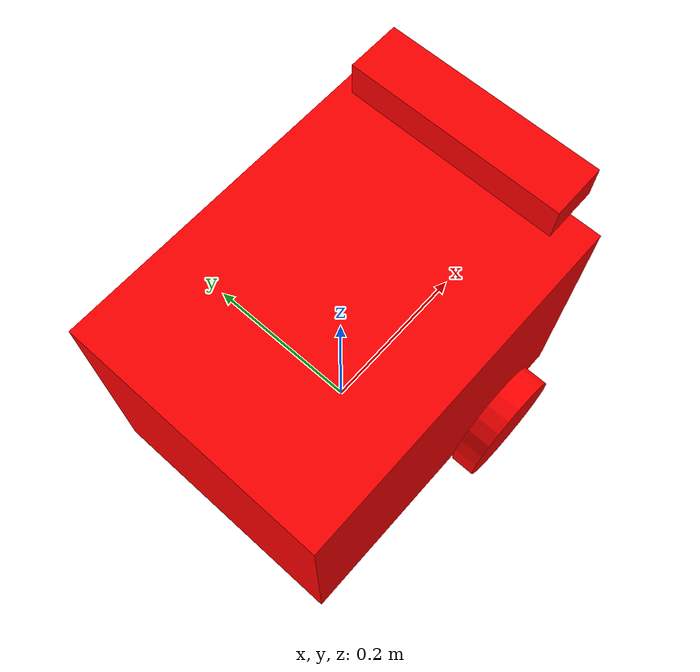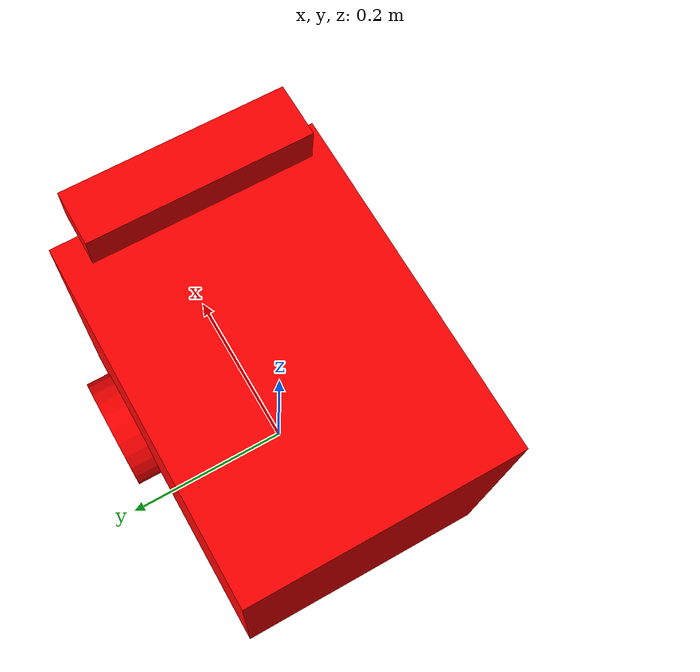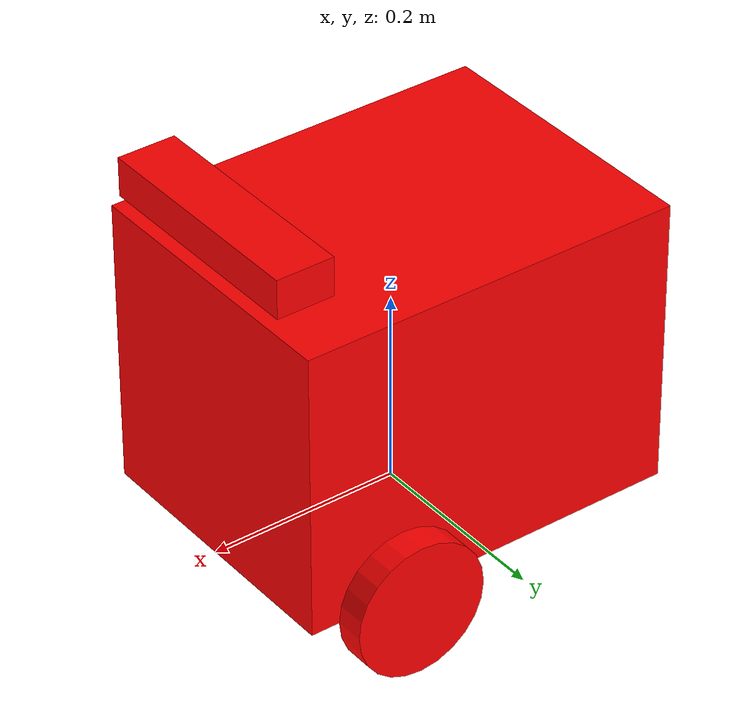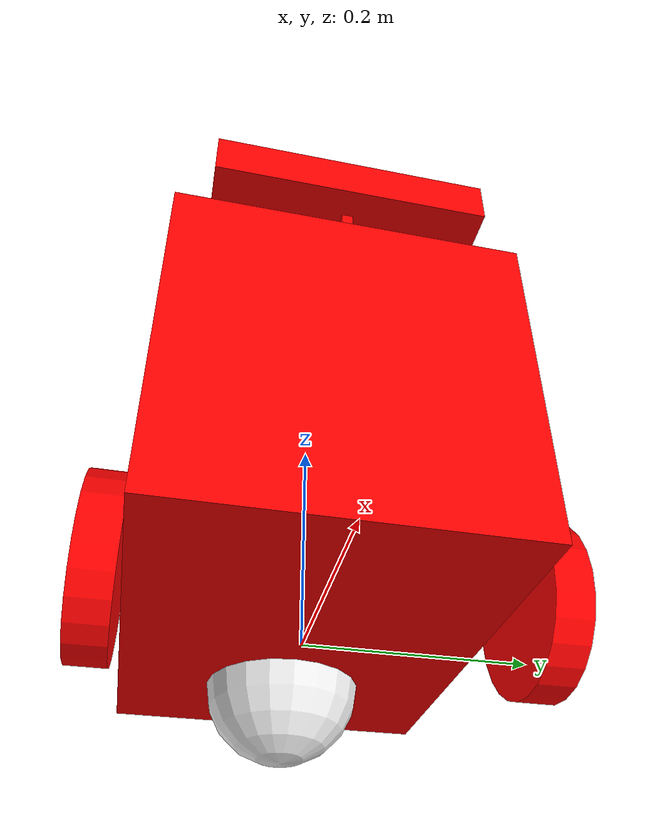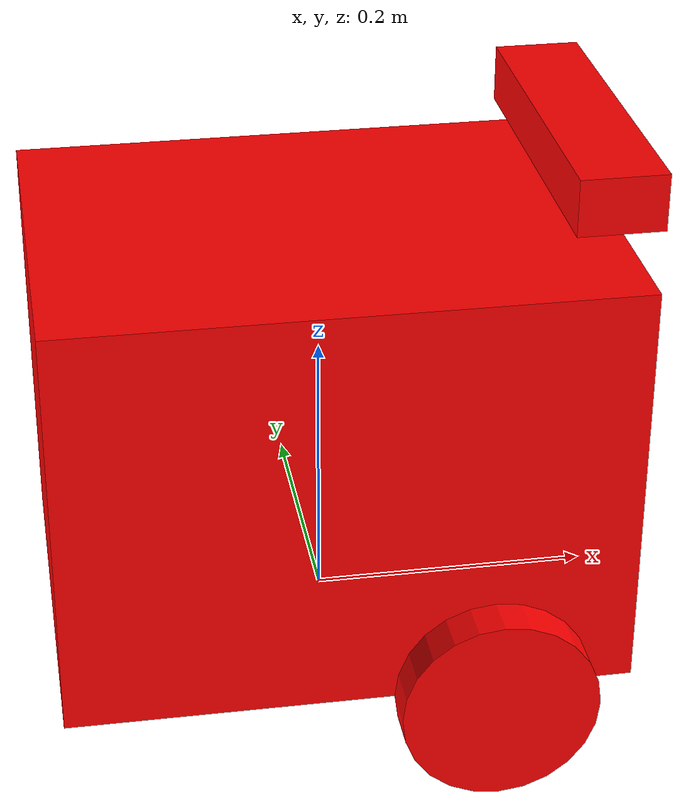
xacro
<?xml version="1.0"?>
<robot name="box_bot" xmlns:xacro="http://www.ros.org/wiki/xacro" >

  <xacro:include filename="my_robot_property.xacro" />
  <xacro:include filename="inertial_script.xacro" />
  <xacro:include filename="material.xacro" />
  <xacro:include filename="my_robot_core.xacro"/>
  <xacro:include filename="gazebo_control.xacro"/>
  <xacro:include filename="gazebo_depth_camera.xacro"/>

</robot>

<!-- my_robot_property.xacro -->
<robot name="box_bot" xmlns:xacro="http://www.ros.org/wiki/xacro" >

  <!-- Добавления материалов и скриптов -->

  <xacro:property name="lenght_robot" value="0.4" />
  <xacro:property name="width_robot" value="0.3" />
  <xacro:property name="height_robot" value="0.3" />

  <xacro:property name="wheel_radius" value="0.07" />
  <xacro:property name="wheel_length" value="0.03" />

  <xacro:property name="wheel_offset_x" value="0.1" />

  <xacro:property name="caster_wheel_radius" value="${wheel_radius}"/>
  <xacro:property name="caster_wheel_mass" value="0.8"/>
  <xacro:property name="caster_wheel_offset_x" value="-0.1"/>
  <xacro:property name="caster_wheel_offset_z" value="0"/>

</robot>

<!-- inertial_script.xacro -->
<robot xmlns:xacro="http://www.ros.org/wiki/xacro" >

    <!-- This file is not a robot in and of itself, it just contains some useful tags that could be included in any robot -->

    <xacro:macro name="inertial_sphere" params="mass radius *origin">
        <inertial>
            <xacro:insert_block name="origin"/>
            <mass value="${mass}" />
            <inertia ixx="${(2/5) * mass * (radius*radius)}" ixy="0.0" ixz="0.0"
                    iyy="${(2/5) * mass * (radius*radius)}" iyz="0.0"
                    izz="${(2/5) * mass * (radius*radius)}" />
        </inertial>
    </xacro:macro>

    <xacro:macro name="inertial_box" params="mass x y z *origin">
        <inertial>
            <xacro:insert_block name="origin"/>
            <mass value="${mass}" />
            <inertia ixx="${(1/12) * mass * (y*y+z*z)}" ixy="0.0" ixz="0.0"
                    iyy="${(1/12) * mass * (x*x+z*z)}" iyz="0.0"
                    izz="${(1/12) * mass * (x*x+y*y)}" />
        </inertial>
    </xacro:macro>

    <xacro:macro name="inertial_cylinder" params="mass length radius *origin">
        <inertial>
            <xacro:insert_block name="origin"/>
            <mass value="${mass}" />
            <inertia ixx="${(1/12) * mass * (3*radius*radius + length*length)}" ixy="0.0" ixz="0.0"
                    iyy="${(1/12) * mass * (3*radius*radius + length*length)}" iyz="0.0"
                    izz="${(1/2) * mass * (radius*radius)}" />
        </inertial>
    </xacro:macro>

</robot>

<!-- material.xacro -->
<robot xmlns:xacro="http://www.ros.org/wiki/xacro" >

    <!-- This file is not a robot in and of itself, it just contains some useful tags that could be included in any robot -->

    <!-- Specify some colours -->

    <material name="primary">
        <color rgba="1 0.3 0.1 1"/>
    </material>

    <material name="secondary">
        <color rgba="0.7 0.15 0.01 1"/>
    </material>

    <material name="base">
        <color rgba="0.1 0.1 0.1 1"/>
    </material>

</robot>

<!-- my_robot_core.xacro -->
<robot name="box_bot" xmlns:xacro="http://www.ros.org/wiki/xacro">
  <xacro:include filename="my_robot_property.xacro" />
  <xacro:include filename="inertial_script.xacro" />

  <link name="base_link"></link>

  <link name="chassi">
    <xacro:inertial_box mass="0.3" x="${lenght_robot}" y="${width_robot}" z="${height_robot}">
      <origin xyz="0.0 0.0 ${height_robot/2}" />
    </xacro:inertial_box>
    <visual name="">
      <origin xyz="0.0 0.0 ${height_robot/2}" rpy="0.0 0.0 0.0" />
      <geometry>
        <box size="${lenght_robot} ${width_robot} ${height_robot}" />
      </geometry>
      <material name="">
        <color rgba="1.0 0.0 0.0 1.0" />
        <texture filename="" />
      </material>
    </visual>
    <collision>
      <origin xyz="0.0 0.0 ${height_robot/2}" rpy="0.0 0.0 0.0" />
      <geometry>
        <box size="${lenght_robot} ${width_robot} ${height_robot}" />
      </geometry>
    </collision>
  </link>

  <joint name="fixed_join" type="fixed">
    <origin xyz="0.0 0.0 0.0" rpy="0.0 0.0 0.0" />
    <parent link="base_link" />
    <child link="chassi" />
  </joint>

  <link name="wheel_left">
    <xacro:inertial_cylinder mass="0.4" radius="${wheel_radius}" length="${wheel_length}">
      <origin xyz="0.0 ${wheel_length/2} 0.0" />
    </xacro:inertial_cylinder>
    <visual name="">
      <origin xyz="0.0 ${wheel_length/2} 0.0" rpy="${pi/2} 0.0 0.0" />
      <geometry>
        <cylinder radius="${wheel_radius}" length="${wheel_length}" />
      </geometry>
      <material name="">
        <color rgba="1.0 0.0 0.0 1.0" />
        <texture filename="" />
      </material>
    </visual>
    <collision>
      <origin xyz="0.0 ${wheel_length/2} 0.0" rpy="${pi/2} 0.0 0.0" />
      <geometry>
        <cylinder radius="${wheel_radius}" length="${wheel_length}" />
      </geometry>
    </collision>
  </link>

  <joint name="join_wheel_left" type="continuous">
    <origin xyz="${wheel_offset_x} ${width_robot/2} 0.0" />
    <parent link="chassi" />
    <child link="wheel_left" />
    <axis xyz="0.0 1 0.0" />
  </joint>

  <link name="wheel_right">
    <xacro:inertial_cylinder mass="0.4" radius="${wheel_radius}" length="${wheel_length}">
      <origin xyz="0.0 ${wheel_length/2} 0.0" />
    </xacro:inertial_cylinder>
    <visual name="">
      <origin xyz="0.0 ${wheel_length/2} 0.0" rpy="${pi/2} 0.0 0.0" />
      <geometry>
        <cylinder radius="${wheel_radius}" length="${wheel_length}" />
      </geometry>
      <material name="">
        <color rgba="1.0 0.0 0.0 1.0" />
        <texture filename="" />
      </material>
    </visual>
    <collision>
      <origin xyz="0.0 ${wheel_length/2} 0.0" rpy="${pi/2} 0.0 0.0" />
      <geometry>
        <cylinder radius="${wheel_radius}" length="${wheel_length}" />
      </geometry>
    </collision>
  </link>

  <joint name="join_wheel_right" type="continuous">
    <origin xyz="${wheel_offset_x} ${-(width_robot/2 + wheel_length)} 0.0" />
    <parent link="chassi" />
    <child link="wheel_right" />
    <axis xyz="0.0 1 0.0" />
  </joint>

    <!-- CASTER WHEEL LINK -->

    <joint name="caster_wheel_joint" type="fixed">
        <parent link="chassi"/>
        <child link="caster_wheel"/>
        <origin xyz="${caster_wheel_offset_x} 0 ${caster_wheel_offset_z}"/>
    </joint>

    <link name="caster_wheel">
        <visual>
            <geometry>
                <sphere radius="${caster_wheel_radius}"/>
            </geometry>
            <material name="white"/>
        </visual>
        <collision>
            <geometry>
                <sphere radius="${caster_wheel_radius}"/>
            </geometry>
        </collision>
        <xacro:inertial_sphere mass="${caster_wheel_mass}" radius="${caster_wheel_radius}">
            <origin xyz="0 0 0" rpy="0 0 0"/>
        </xacro:inertial_sphere>
    </link>

    <gazebo reference="caster_wheel">
        <material>Gazebo/White</material>
        <mu1 value="0.001"/>
        <mu2 value="0.001"/>
    </gazebo>

  <!-- DEPTH CAMERA -->
  <link name="base_depth_camera">
    <xacro:inertial_box mass="0.002" x="0.01" y="0.01" z="0.03">
      <origin xyz="0.0 0.0 0.015" />
    </xacro:inertial_box>
    <visual name="">
      <origin xyz="0.0 0.0 0.015" rpy="0.0 0.0 0.0" />
      <geometry>
        <box size="0.01 0.01 0.03" />
      </geometry>
      <material name="">
        <color rgba="1.0 0.0 0.0 1.0" />
        <texture filename="" />
      </material>
    </visual>
    <collision>
      <origin xyz="0.0 0.0 0.015" rpy="0.0 0.0 0.0" />
      <geometry>
        <box size="0.01 0.01 0.03" />
      </geometry>
    </collision>
  </link>

  <joint name="base_depth_camera_joint" type="fixed">
    <origin xyz=" ${(lenght_robot/2)-0.02} 0.0 ${height_robot}" rpy="0.0 0.0 0.0" />
    <parent link="chassi" />
    <child link="base_depth_camera" />
  </joint>

  <link name="depth_camera">
    <xacro:inertial_box mass="0.01" x="0.06" y="0.24" z="0.04">
      <origin xyz="0.0 0.0 0.02" rpy="0.0 0.0 0.0" />
    </xacro:inertial_box>
    <visual name="">
      <origin xyz="0.0 0.0 0.02" rpy="0.0 0.0 0.0" />
      <geometry>
        <box size="0.06 0.24 0.04" />
      </geometry>
      <material name="">
        <color rgba="1.0 0.0 0.0 1.0" />
        <texture filename="" />
      </material>
    </visual>
    <collision>
      <origin xyz="0.0 0.0 0.02" rpy="0.0 0.0 0.0" />
      <geometry>
        <box size="0.06 0.24 0.04" />
      </geometry>
    </collision>
  </link>

  <joint name="depth_camera_joint" type="fixed">
    <origin xyz="0.0 0.0 0.03" rpy="0.0 0.0 0.0" />
    <parent link="base_depth_camera" />
    <child link="depth_camera" />
  </joint>

</robot>

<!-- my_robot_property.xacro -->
<robot name="box_bot" xmlns:xacro="http://www.ros.org/wiki/xacro" >

  <!-- Добавления материалов и скриптов -->

  <xacro:property name="lenght_robot" value="0.4" />
  <xacro:property name="width_robot" value="0.3" />
  <xacro:property name="height_robot" value="0.3" />

  <xacro:property name="wheel_radius" value="0.07" />
  <xacro:property name="wheel_length" value="0.03" />

  <xacro:property name="wheel_offset_x" value="0.1" />

</robot>
